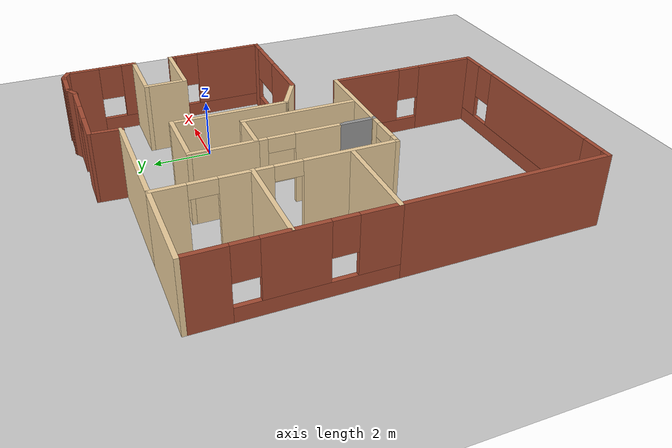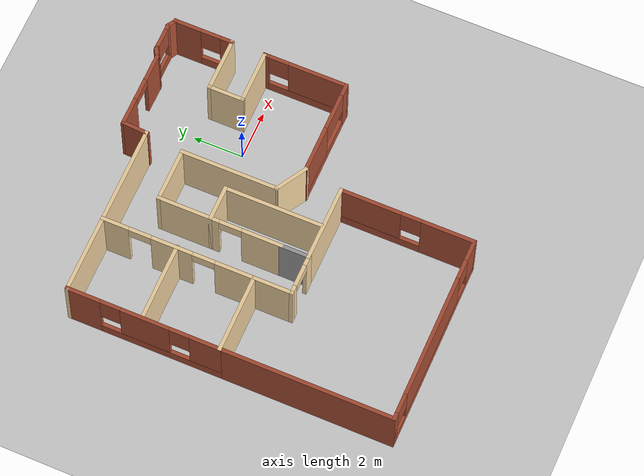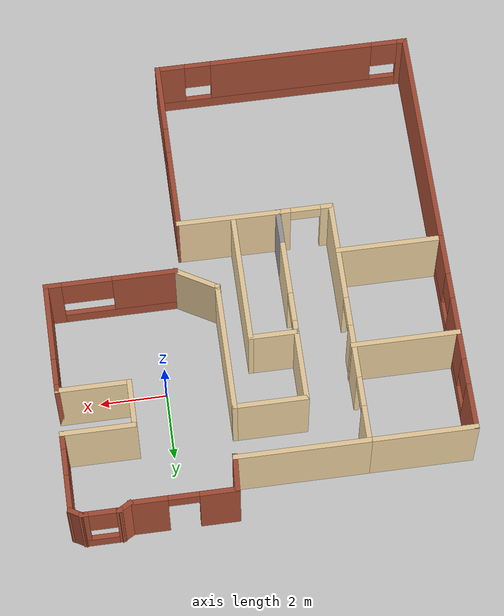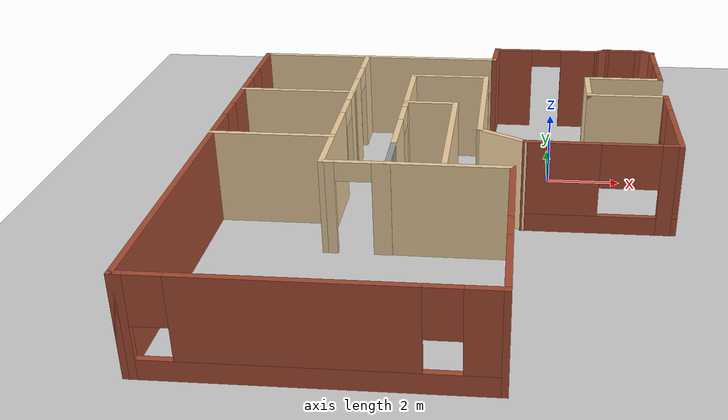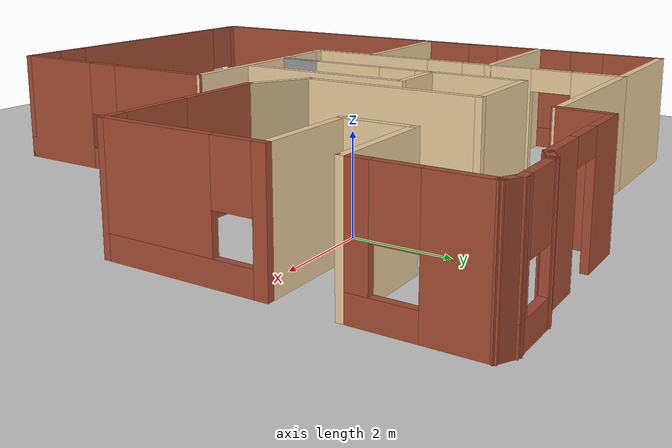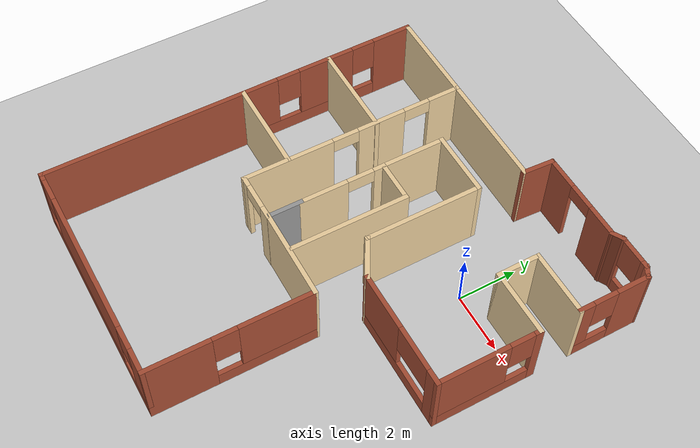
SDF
<sdf version="1.6">
 <world name="default">
  <model name="ground_plane">
   <static>1</static>
   <link name="link">
    <collision name="collision">
     <geometry><plane><normal>0 0 1</normal><size>100 100</size></plane></geometry>
     <surface><friction><ode><mu>100</mu><mu2>50</mu2></ode></friction></surface>
    </collision>
    <visual name="visual">
     <cast_shadows>0</cast_shadows>
     <geometry><plane><normal>0 0 1</normal><size>100 100</size></plane></geometry>
     <material>
      <script><uri>file://media/materials/scripts/gazebo.material</uri><name>Gazebo/Grey</name></script>
     </material>
    </visual>
   </link>
  </model>
  <model name="Silversprings">
   <pose>-2.73372 -2.72178 0 0 -0 0</pose>
   <link name="Wall_0">
    <pose>2.65627 6.86127 0 0 -0 0</pose>
    <visual name="Wall_0_Visual_0">
     <pose>-1.02638 0 1.25 0 -0 0</pose>
     <geometry><box><size>1.16439 0.15 2.5</size></box></geometry>
     <material>
      <script><uri>file://media/materials/scripts/gazebo.material</uri><name>Gazebo/Bricks</name></script>
      <ambient>1 1 1 1</ambient>
     </material>
     <meta><layer>0</layer></meta>
    </visual>
    <collision name="Wall_0_Collision_0">
     <geometry><box><size>1.16439 0.15 2.5</size></box></geometry>
     <pose>-1.02638 0 1.25 0 -0 0</pose>
    </collision>
    <visual name="Wall_0_Visual_1">
     <pose>1.0322 0 1.25 0 -0 0</pose>
     <geometry><box><size>1.15276 0.15 2.5</size></box></geometry>
     <material>
      <script><uri>file://media/materials/scripts/gazebo.material</uri><name>Gazebo/Bricks</name></script>
      <ambient>1 1 1 1</ambient>
     </material>
     <meta><layer>0</layer></meta>
    </visual>
    <collision name="Wall_0_Collision_1">
     <geometry><box><size>1.15276 0.15 2.5</size></box></geometry>
     <pose>1.0322 0 1.25 0 -0 0</pose>
    </collision>
    <visual name="Wall_0_Visual_2">
     <pose>0.005815 0 2.25 0 -0 0</pose>
     <geometry><box><size>0.9 0.15 0.5</size></box></geometry>
     <material>
      <script><uri>file://media/materials/scripts/gazebo.material</uri><name>Gazebo/Bricks</name></script>
      <ambient>1 1 1 1</ambient>
     </material>
     <meta><layer>0</layer></meta>
    </visual>
    <collision name="Wall_0_Collision_2">
     <geometry><box><size>0.9 0.15 0.5</size></box></geometry>
     <pose>0.005815 0 2.25 0 -0 0</pose>
    </collision>
   </link>
   <link name="Wall_1">
    <collision name="Wall_1_Collision">
     <geometry><box><size>0.5 0.15 2.5</size></box></geometry>
     <pose>0 0 1.25 0 -0 0</pose>
    </collision>
    <visual name="Wall_1_Visual">
     <pose>0 0 1.25 0 -0 0</pose>
     <geometry><box><size>0.5 0.15 2.5</size></box></geometry>
     <material>
      <script><uri>file://media/materials/scripts/gazebo.material</uri><name>Gazebo/Bricks</name></script>
      <ambient>1 1 1 1</ambient>
     </material>
     <meta><layer>0</layer></meta>
    </visual>
    <pose>4.34118 6.94877 0 0 -0 0.523599</pose>
   </link>
   <link name="Wall_10">
    <collision name="Wall_10_Collision">
     <geometry><box><size>2.25 0.15 2.5</size></box></geometry>
     <pose>0 0 1.25 0 -0 0</pose>
    </collision>
    <visual name="Wall_10_Visual">
     <pose>0 0 1.25 0 -0 0</pose>
     <geometry><box><size>2.25 0.15 2.5</size></box></geometry>
     <material>
      <script><uri>file://media/materials/scripts/gazebo.material</uri><name>Gazebo/Grey</name></script>
      <ambient>0.921569 0.807843 0.615686 1</ambient>
     </material>
     <meta><layer>0</layer></meta>
    </visual>
    <pose>4.84584 3.16127 0 0 -0 0</pose>
   </link>
   <link name="Wall_14">
    <pose>5.89584 1.48627 0 0 0 -1.5708</pose>
    <visual name="Wall_14_Visual_0">
     <pose>-1.61318 0 1.25 0 -0 0</pose>
     <geometry><box><size>0.273643 0.15 2.5</size></box></geometry>
     <material>
      <script><uri>file://media/materials/scripts/gazebo.material</uri><name>Gazebo/Bricks</name></script>
      <ambient>1 1 1 1</ambient>
     </material>
     <meta><layer>0</layer></meta>
    </visual>
    <collision name="Wall_14_Collision_0">
     <geometry><box><size>0.273643 0.15 2.5</size></box></geometry>
     <pose>-1.61318 0 1.25 0 -0 0</pose>
    </collision>
    <visual name="Wall_14_Visual_1">
     <pose>0.136822 0 0.25 0 -0 0</pose>
     <geometry><box><size>3.22636 0.15 0.5</size></box></geometry>
     <material>
      <script><uri>file://media/materials/scripts/gazebo.material</uri><name>Gazebo/Bricks</name></script>
      <ambient>1 1 1 1</ambient>
     </material>
     <meta><layer>0</layer></meta>
    </visual>
    <collision name="Wall_14_Collision_1">
     <geometry><box><size>3.22636 0.15 0.5</size></box></geometry>
     <pose>0.136822 0 0.25 0 -0 0</pose>
    </collision>
    <visual name="Wall_14_Visual_2">
     <pose>0.536822 0 1.5 0 -0 0</pose>
     <geometry><box><size>2.42636 0.15 2</size></box></geometry>
     <material>
      <script><uri>file://media/materials/scripts/gazebo.material</uri><name>Gazebo/Bricks</name></script>
      <ambient>1 1 1 1</ambient>
     </material>
     <meta><layer>0</layer></meta>
    </visual>
    <collision name="Wall_14_Collision_2">
     <geometry><box><size>2.42636 0.15 2</size></box></geometry>
     <pose>0.536822 0 1.5 0 -0 0</pose>
    </collision>
    <visual name="Wall_14_Visual_3">
     <pose>-1.07636 0 1.9 0 -0 0</pose>
     <geometry><box><size>0.8 0.15 1.2</size></box></geometry>
     <material>
      <script><uri>file://media/materials/scripts/gazebo.material</uri><name>Gazebo/Bricks</name></script>
      <ambient>1 1 1 1</ambient>
     </material>
     <meta><layer>0</layer></meta>
    </visual>
    <collision name="Wall_14_Collision_3">
     <geometry><box><size>0.8 0.15 1.2</size></box></geometry>
     <pose>-1.07636 0 1.9 0 -0 0</pose>
    </collision>
   </link>
   <link name="Wall_15">
    <pose>3.97084 -0.188725 0 0 -0 3.14159</pose>
    <visual name="Wall_15_Visual_0">
     <pose>-1.7298 0 1.25 0 -0 0</pose>
     <geometry><box><size>0.540398 0.15 2.5</size></box></geometry>
     <material>
      <script><uri>file://media/materials/scripts/gazebo.material</uri><name>Gazebo/Bricks</name></script>
      <ambient>1 1 1 1</ambient>
     </material>
     <meta><layer>0</layer></meta>
    </visual>
    <collision name="Wall_15_Collision_0">
     <geometry><box><size>0.540398 0.15 2.5</size></box></geometry>
     <pose>-1.7298 0 1.25 0 -0 0</pose>
    </collision>
    <visual name="Wall_15_Visual_1">
     <pose>0.270199 0 0.25 0 -0 0</pose>
     <geometry><box><size>3.4596 0.15 0.5</size></box></geometry>
     <material>
      <script><uri>file://media/materials/scripts/gazebo.material</uri><name>Gazebo/Bricks</name></script>
      <ambient>1 1 1 1</ambient>
     </material>
     <meta><layer>0</layer></meta>
    </visual>
    <collision name="Wall_15_Collision_1">
     <geometry><box><size>3.4596 0.15 0.5</size></box></geometry>
     <pose>0.270199 0 0.25 0 -0 0</pose>
    </collision>
    <visual name="Wall_15_Visual_2">
     <pose>1.0202 0 1.5 0 -0 0</pose>
     <geometry><box><size>1.9596 0.15 2</size></box></geometry>
     <material>
      <script><uri>file://media/materials/scripts/gazebo.material</uri><name>Gazebo/Bricks</name></script>
      <ambient>1 1 1 1</ambient>
     </material>
     <meta><layer>0</layer></meta>
    </visual>
    <collision name="Wall_15_Collision_2">
     <geometry><box><size>1.9596 0.15 2</size></box></geometry>
     <pose>1.0202 0 1.5 0 -0 0</pose>
    </collision>
    <visual name="Wall_15_Visual_3">
     <pose>-0.709602 0 1.9 0 -0 0</pose>
     <geometry><box><size>1.5 0.15 1.2</size></box></geometry>
     <material>
      <script><uri>file://media/materials/scripts/gazebo.material</uri><name>Gazebo/Bricks</name></script>
      <ambient>1 1 1 1</ambient>
     </material>
     <meta><layer>0</layer></meta>
    </visual>
    <collision name="Wall_15_Collision_3">
     <geometry><box><size>1.5 0.15 1.2</size></box></geometry>
     <pose>-0.709602 0 1.9 0 -0 0</pose>
    </collision>
   </link>
   <link name="Wall_16">
    <collision name="Wall_16_Collision">
     <geometry><box><size>1.5 0.15 2.5</size></box></geometry>
     <pose>0 0 1.25 0 -0 0</pose>
    </collision>
    <visual name="Wall_16_Visual">
     <pose>0 0 1.25 0 -0 0</pose>
     <geometry><box><size>1.5 0.15 2.5</size></box></geometry>
     <material>
      <script><uri>file://media/materials/scripts/gazebo.material</uri><name>Gazebo/Grey</name></script>
      <ambient>0.921569 0.807843 0.615686 1</ambient>
     </material>
     <meta><layer>0</layer></meta>
    </visual>
    <pose>1.46128 0.148774 0 0 -0 2.61799</pose>
   </link>
   <link name="Wall_17">
    <collision name="Wall_17_Collision">
     <geometry><box><size>4 0.15 2.5</size></box></geometry>
     <pose>0 0 1.25 0 -0 0</pose>
    </collision>
    <visual name="Wall_17_Visual">
     <pose>0 0 1.25 0 -0 0</pose>
     <geometry><box><size>4 0.15 2.5</size></box></geometry>
     <material>
      <script><uri>file://media/materials/scripts/gazebo.material</uri><name>Gazebo/Grey</name></script>
      <ambient>0.921569 0.807843 0.615686 1</ambient>
     </material>
     <meta><layer>0</layer></meta>
    </visual>
    <pose>0.876707 2.41127 0 0 -0 1.5708</pose>
   </link>
   <link name="Wall_18">
    <collision name="Wall_18_Collision">
     <geometry><box><size>2.25 0.15 2.5</size></box></geometry>
     <pose>0 0 1.25 0 -0 0</pose>
    </collision>
    <visual name="Wall_18_Visual">
     <pose>0 0 1.25 0 -0 0</pose>
     <geometry><box><size>2.25 0.15 2.5</size></box></geometry>
     <material>
      <script><uri>file://media/materials/scripts/gazebo.material</uri><name>Gazebo/Grey</name></script>
      <ambient>0.921569 0.807843 0.615686 1</ambient>
     </material>
     <meta><layer>0</layer></meta>
    </visual>
    <pose>-0.173293 4.33627 0 0 -0 3.14159</pose>
   </link>
   <link name="Wall_19">
    <collision name="Wall_19_Collision">
     <geometry><box><size>2.25 0.15 2.5</size></box></geometry>
     <pose>0 0 1.25 0 -0 0</pose>
    </collision>
    <visual name="Wall_19_Visual">
     <pose>0 0 1.25 0 -0 0</pose>
     <geometry><box><size>2.25 0.15 2.5</size></box></geometry>
     <material>
      <script><uri>file://media/materials/scripts/gazebo.material</uri><name>Gazebo/Grey</name></script>
      <ambient>0.921569 0.807843 0.615686 1</ambient>
     </material>
     <meta><layer>0</layer></meta>
    </visual>
    <pose>-1.22329 3.28627 0 0 0 -1.5708</pose>
   </link>
   <link name="Wall_2">
    <pose>5.04273 7.03627 0 0 -0 0</pose>
    <visual name="Wall_2_Visual_0">
     <pose>-0.530235 0 1.25 0 -0 0</pose>
     <geometry><box><size>0.18953 0.15 2.5</size></box></geometry>
     <material>
      <script><uri>file://media/materials/scripts/gazebo.material</uri><name>Gazebo/Bricks</name></script>
      <ambient>1 1 1 1</ambient>
     </material>
     <meta><layer>0</layer></meta>
    </visual>
    <collision name="Wall_2_Collision_0">
     <geometry><box><size>0.18953 0.15 2.5</size></box></geometry>
     <pose>-0.530235 0 1.25 0 -0 0</pose>
    </collision>
    <visual name="Wall_2_Visual_1">
     <pose>0.094765 0 0.25 0 -0 0</pose>
     <geometry><box><size>1.06047 0.15 0.5</size></box></geometry>
     <material>
      <script><uri>file://media/materials/scripts/gazebo.material</uri><name>Gazebo/Bricks</name></script>
      <ambient>1 1 1 1</ambient>
     </material>
     <meta><layer>0</layer></meta>
    </visual>
    <collision name="Wall_2_Collision_1">
     <geometry><box><size>1.06047 0.15 0.5</size></box></geometry>
     <pose>0.094765 0 0.25 0 -0 0</pose>
    </collision>
    <visual name="Wall_2_Visual_2">
     <pose>0.494765 0 1.5 0 -0 0</pose>
     <geometry><box><size>0.26047 0.15 2</size></box></geometry>
     <material>
      <script><uri>file://media/materials/scripts/gazebo.material</uri><name>Gazebo/Bricks</name></script>
      <ambient>1 1 1 1</ambient>
     </material>
     <meta><layer>0</layer></meta>
    </visual>
    <collision name="Wall_2_Collision_2">
     <geometry><box><size>0.26047 0.15 2</size></box></geometry>
     <pose>0.494765 0 1.5 0 -0 0</pose>
    </collision>
    <visual name="Wall_2_Visual_3">
     <pose>-0.03547 0 1.9 0 -0 0</pose>
     <geometry><box><size>0.8 0.15 1.2</size></box></geometry>
     <material>
      <script><uri>file://media/materials/scripts/gazebo.material</uri><name>Gazebo/Bricks</name></script>
      <ambient>1 1 1 1</ambient>
     </material>
     <meta><layer>0</layer></meta>
    </visual>
    <collision name="Wall_2_Collision_3">
     <geometry><box><size>0.8 0.15 1.2</size></box></geometry>
     <pose>-0.03547 0 1.9 0 -0 0</pose>
    </collision>
   </link>
   <link name="Wall_20">
    <collision name="Wall_20_Collision">
     <geometry><box><size>1.5 0.15 2.5</size></box></geometry>
     <pose>0 0 1.25 0 -0 0</pose>
    </collision>
    <visual name="Wall_20_Visual">
     <pose>0 0 1.25 0 -0 0</pose>
     <geometry><box><size>1.5 0.15 2.5</size></box></geometry>
     <material>
      <script><uri>file://media/materials/scripts/gazebo.material</uri><name>Gazebo/Grey</name></script>
      <ambient>0.921569 0.807843 0.615686 1</ambient>
     </material>
     <meta><layer>0</layer></meta>
    </visual>
    <pose>-0.548293 2.23627 0 0 -0 0</pose>
   </link>
   <link name="Wall_21">
    <collision name="Wall_21_Collision">
     <geometry><box><size>4 0.15 2.5</size></box></geometry>
     <pose>0 0 1.25 0 -0 0</pose>
    </collision>
    <visual name="Wall_21_Visual">
     <pose>0 0 1.25 0 -0 0</pose>
     <geometry><box><size>4 0.15 2.5</size></box></geometry>
     <material>
      <script><uri>file://media/materials/scripts/gazebo.material</uri><name>Gazebo/Grey</name></script>
      <ambient>0.921569 0.807843 0.615686 1</ambient>
     </material>
     <meta><layer>0</layer></meta>
    </visual>
    <pose>0.126707 0.311275 0 0 0 -1.5708</pose>
   </link>
   <link name="Wall_23">
    <pose>-1.22329 0.811275 0 0 -0 1.5708</pose>
    <visual name="Wall_23_Visual_0">
     <pose>-0.66518 0 1.25 0 -0 0</pose>
     <geometry><box><size>1.66964 0.15 2.5</size></box></geometry>
     <material>
      <script><uri>file://media/materials/scripts/gazebo.material</uri><name>Gazebo/Grey</name></script>
      <ambient>0.921569 0.807843 0.615686 1</ambient>
     </material>
     <meta><layer>0</layer></meta>
    </visual>
    <collision name="Wall_23_Collision_0">
     <geometry><box><size>1.66964 0.15 2.5</size></box></geometry>
     <pose>-0.66518 0 1.25 0 -0 0</pose>
    </collision>
    <visual name="Wall_23_Visual_1">
     <pose>1.28482 0 1.25 0 -0 0</pose>
     <geometry><box><size>0.43036 0.15 2.5</size></box></geometry>
     <material>
      <script><uri>file://media/materials/scripts/gazebo.material</uri><name>Gazebo/Grey</name></script>
      <ambient>0.921569 0.807843 0.615686 1</ambient>
     </material>
     <meta><layer>0</layer></meta>
    </visual>
    <collision name="Wall_23_Collision_1">
     <geometry><box><size>0.43036 0.15 2.5</size></box></geometry>
     <pose>1.28482 0 1.25 0 -0 0</pose>
    </collision>
    <visual name="Wall_23_Visual_2">
     <pose>0.61964 0 2.25 0 -0 0</pose>
     <geometry><box><size>0.9 0.15 0.5</size></box></geometry>
     <material>
      <script><uri>file://media/materials/scripts/gazebo.material</uri><name>Gazebo/Grey</name></script>
      <ambient>0.921569 0.807843 0.615686 1</ambient>
     </material>
     <meta><layer>0</layer></meta>
    </visual>
    <collision name="Wall_23_Collision_2">
     <geometry><box><size>0.9 0.15 0.5</size></box></geometry>
     <pose>0.61964 0 2.25 0 -0 0</pose>
    </collision>
   </link>
   <link name="Wall_25">
    <collision name="Wall_25_Collision">
     <geometry><box><size>1.25 0.15 2.5</size></box></geometry>
     <pose>0 0 1.25 0 -0 0</pose>
    </collision>
    <visual name="Wall_25_Visual">
     <pose>0 0 1.25 0 -0 0</pose>
     <geometry><box><size>1.25 0.15 2.5</size></box></geometry>
     <material>
      <script><uri>file://media/materials/scripts/gazebo.material</uri><name>Gazebo/Grey</name></script>
      <ambient>1 1 1 1</ambient>
     </material>
     <meta><layer>0</layer></meta>
    </visual>
    <pose>-1.22329 -1.16373 0 0 0 -1.5708</pose>
   </link>
   <link name="Wall_26">
    <pose>-2.02329 -1.71373 0 0 -0 3.14159</pose>
    <visual name="Wall_26_Visual_0">
     <pose>-0.643622 0 1.25 0 -0 0</pose>
     <geometry><box><size>0.462755 0.15 2.5</size></box></geometry>
     <material>
      <script><uri>file://media/materials/scripts/gazebo.material</uri><name>Gazebo/Grey</name></script>
      <ambient>0.921569 0.807843 0.615686 1</ambient>
     </material>
     <meta><layer>0</layer></meta>
    </visual>
    <collision name="Wall_26_Collision_0">
     <geometry><box><size>0.462755 0.15 2.5</size></box></geometry>
     <pose>-0.643622 0 1.25 0 -0 0</pose>
    </collision>
    <visual name="Wall_26_Visual_1">
     <pose>0.681378 0 1.25 0 -0 0</pose>
     <geometry><box><size>0.387245 0.15 2.5</size></box></geometry>
     <material>
      <script><uri>file://media/materials/scripts/gazebo.material</uri><name>Gazebo/Grey</name></script>
      <ambient>0.921569 0.807843 0.615686 1</ambient>
     </material>
     <meta><layer>0</layer></meta>
    </visual>
    <collision name="Wall_26_Collision_1">
     <geometry><box><size>0.387245 0.15 2.5</size></box></geometry>
     <pose>0.681378 0 1.25 0 -0 0</pose>
    </collision>
    <visual name="Wall_26_Visual_2">
     <pose>0.037755 0 2.25 0 -0 0</pose>
     <geometry><box><size>0.9 0.15 0.5</size></box></geometry>
     <material>
      <script><uri>file://media/materials/scripts/gazebo.material</uri><name>Gazebo/Grey</name></script>
      <ambient>0.921569 0.807843 0.615686 1</ambient>
     </material>
     <meta><layer>0</layer></meta>
    </visual>
    <collision name="Wall_26_Collision_2">
     <geometry><box><size>0.9 0.15 0.5</size></box></geometry>
     <pose>0.037755 0 2.25 0 -0 0</pose>
    </collision>
   </link>
   <link name="Wall_28">
    <pose>-2.82329 2.08627 0 0 -0 1.5708</pose>
    <visual name="Wall_28_Visual_0">
     <pose>-2.30486 0 1.25 0 -0 0</pose>
     <geometry><box><size>3.14028 0.15 2.5</size></box></geometry>
     <material>
      <script><uri>file://media/materials/scripts/gazebo.material</uri><name>Gazebo/Grey</name></script>
      <ambient>0.921569 0.807843 0.615686 1</ambient>
     </material>
     <meta><layer>0</layer></meta>
    </visual>
    <collision name="Wall_28_Collision_0">
     <geometry><box><size>3.14028 0.15 2.5</size></box></geometry>
     <pose>-2.30486 0 1.25 0 -0 0</pose>
    </collision>
    <visual name="Wall_28_Visual_1">
     <pose>0.998102 0 1.25 0 -0 0</pose>
     <geometry><box><size>1.66565 0.15 2.5</size></box></geometry>
     <material>
      <script><uri>file://media/materials/scripts/gazebo.material</uri><name>Gazebo/Grey</name></script>
      <ambient>0.921569 0.807843 0.615686 1</ambient>
     </material>
     <meta><layer>0</layer></meta>
    </visual>
    <collision name="Wall_28_Collision_1">
     <geometry><box><size>1.66565 0.15 2.5</size></box></geometry>
     <pose>0.998102 0 1.25 0 -0 0</pose>
    </collision>
    <visual name="Wall_28_Visual_2">
     <pose>3.30296 0 1.25 0 -0 0</pose>
     <geometry><box><size>1.14407 0.15 2.5</size></box></geometry>
     <material>
      <script><uri>file://media/materials/scripts/gazebo.material</uri><name>Gazebo/Grey</name></script>
      <ambient>0.921569 0.807843 0.615686 1</ambient>
     </material>
     <meta><layer>0</layer></meta>
    </visual>
    <collision name="Wall_28_Collision_2">
     <geometry><box><size>1.14407 0.15 2.5</size></box></geometry>
     <pose>3.30296 0 1.25 0 -0 0</pose>
    </collision>
    <visual name="Wall_28_Visual_3">
     <pose>-0.284723 0 2.25 0 -0 0</pose>
     <geometry><box><size>0.9 0.15 0.5</size></box></geometry>
     <material>
      <script><uri>file://media/materials/scripts/gazebo.material</uri><name>Gazebo/Grey</name></script>
      <ambient>0.921569 0.807843 0.615686 1</ambient>
     </material>
     <meta><layer>0</layer></meta>
    </visual>
    <collision name="Wall_28_Collision_3">
     <geometry><box><size>0.9 0.15 0.5</size></box></geometry>
     <pose>-0.284723 0 2.25 0 -0 0</pose>
    </collision>
    <visual name="Wall_28_Visual_4">
     <pose>2.28093 0 2.25 0 -0 0</pose>
     <geometry><box><size>0.9 0.15 0.5</size></box></geometry>
     <material>
      <script><uri>file://media/materials/scripts/gazebo.material</uri><name>Gazebo/Grey</name></script>
      <ambient>0.921569 0.807843 0.615686 1</ambient>
     </material>
     <meta><layer>0</layer></meta>
    </visual>
    <collision name="Wall_28_Collision_4">
     <geometry><box><size>0.9 0.15 0.5</size></box></geometry>
     <pose>2.28093 0 2.25 0 -0 0</pose>
    </collision>
   </link>
   <link name="Wall_3">
    <collision name="Wall_3_Collision">
     <geometry><box><size>0.5 0.15 2.5</size></box></geometry>
     <pose>0 0 1.25 0 -0 0</pose>
    </collision>
    <visual name="Wall_3_Visual">
     <pose>0 0 1.25 0 -0 0</pose>
     <geometry><box><size>0.5 0.15 2.5</size></box></geometry>
     <material>
      <script><uri>file://media/materials/scripts/gazebo.material</uri><name>Gazebo/Bricks</name></script>
      <ambient>1 1 1 1</ambient>
     </material>
     <meta><layer>0</layer></meta>
    </visual>
    <pose>5.74429 6.94877 0 0 0 -0.523599</pose>
   </link>
   <link name="Wall_31">
    <collision name="Wall_31_Collision">
     <geometry><box><size>4.03366 0.15 2.5</size></box></geometry>
     <pose>0 0 1.25 0 -0 0</pose>
    </collision>
    <visual name="Wall_31_Visual">
     <pose>0 0 1.25 0 -0 0</pose>
     <geometry><box><size>4.03366 0.15 2.5</size></box></geometry>
     <material>
      <script><uri>file://media/materials/scripts/gazebo.material</uri><name>Gazebo/Grey</name></script>
      <ambient>0.921569 0.807843 0.615686 1</ambient>
     </material>
     <meta><layer>0</layer></meta>
    </visual>
    <pose>-0.881642 5.88627 0 0 -0 0</pose>
   </link>
   <link name="Wall_32">
    <collision name="Wall_32_Collision">
     <geometry><box><size>1.12703 0.15 2.5</size></box></geometry>
     <pose>0 0 1.25 0 -0 0</pose>
    </collision>
    <visual name="Wall_32_Visual">
     <pose>0 0 1.25 0 -0 0</pose>
     <geometry><box><size>1.12703 0.15 2.5</size></box></geometry>
     <material>
      <script><uri>file://media/materials/scripts/gazebo.material</uri><name>Gazebo/Bricks</name></script>
      <ambient>1 1 1 1</ambient>
     </material>
     <meta><layer>0</layer></meta>
    </visual>
    <pose>1.09147 6.34732 0 0 -0 1.50636</pose>
   </link>
   <link name="Wall_34">
    <collision name="Wall_34_Collision">
     <geometry><box><size>3.25 0.15 2.5</size></box></geometry>
     <pose>0 0 1.25 0 -0 0</pose>
    </collision>
    <visual name="Wall_34_Visual">
     <pose>0 0 1.25 0 -0 0</pose>
     <geometry><box><size>3.25 0.15 2.5</size></box></geometry>
     <material>
      <script><uri>file://media/materials/scripts/gazebo.material</uri><name>Gazebo/Grey</name></script>
      <ambient>0.921569 0.807843 0.615686 1</ambient>
     </material>
     <meta><layer>0</layer></meta>
    </visual>
    <pose>-4.37329 5.88627 0 0 -0 3.14159</pose>
   </link>
   <link name="Wall_35">
    <pose>-5.92329 2.83627 0 0 0 -1.5708</pose>
    <visual name="Wall_35_Visual_0">
     <pose>-2.42116 0 1.25 0 -0 0</pose>
     <geometry><box><size>1.40768 0.15 2.5</size></box></geometry>
     <material>
      <script><uri>file://media/materials/scripts/gazebo.material</uri><name>Gazebo/Bricks</name></script>
      <ambient>1 1 1 1</ambient>
     </material>
     <meta><layer>0</layer></meta>
    </visual>
    <collision name="Wall_35_Collision_0">
     <geometry><box><size>1.40768 0.15 2.5</size></box></geometry>
     <pose>-2.42116 0 1.25 0 -0 0</pose>
    </collision>
    <visual name="Wall_35_Visual_1">
     <pose>0.703839 0 0.25 0 -0 0</pose>
     <geometry><box><size>4.84232 0.15 0.5</size></box></geometry>
     <material>
      <script><uri>file://media/materials/scripts/gazebo.material</uri><name>Gazebo/Bricks</name></script>
      <ambient>1 1 1 1</ambient>
     </material>
     <meta><layer>0</layer></meta>
    </visual>
    <collision name="Wall_35_Collision_1">
     <geometry><box><size>4.84232 0.15 0.5</size></box></geometry>
     <pose>0.703839 0 0.25 0 -0 0</pose>
    </collision>
    <visual name="Wall_35_Visual_2">
     <pose>0.066126 0 1.5 0 -0 0</pose>
     <geometry><box><size>1.9669 0.15 2</size></box></geometry>
     <material>
      <script><uri>file://media/materials/scripts/gazebo.material</uri><name>Gazebo/Bricks</name></script>
      <ambient>1 1 1 1</ambient>
     </material>
     <meta><layer>0</layer></meta>
    </visual>
    <collision name="Wall_35_Collision_2">
     <geometry><box><size>1.9669 0.15 2</size></box></geometry>
     <pose>0.066126 0 1.5 0 -0 0</pose>
    </collision>
    <visual name="Wall_35_Visual_3">
     <pose>2.48729 0 1.5 0 -0 0</pose>
     <geometry><box><size>1.27543 0.15 2</size></box></geometry>
     <material>
      <script><uri>file://media/materials/scripts/gazebo.material</uri><name>Gazebo/Bricks</name></script>
      <ambient>1 1 1 1</ambient>
     </material>
     <meta><layer>0</layer></meta>
    </visual>
    <collision name="Wall_35_Collision_3">
     <geometry><box><size>1.27543 0.15 2</size></box></geometry>
     <pose>2.48729 0 1.5 0 -0 0</pose>
    </collision>
    <visual name="Wall_35_Visual_4">
     <pose>-1.31732 0 1.9 0 -0 0</pose>
     <geometry><box><size>0.8 0.15 1.2</size></box></geometry>
     <material>
      <script><uri>file://media/materials/scripts/gazebo.material</uri><name>Gazebo/Bricks</name></script>
      <ambient>1 1 1 1</ambient>
     </material>
     <meta><layer>0</layer></meta>
    </visual>
    <collision name="Wall_35_Collision_4">
     <geometry><box><size>0.8 0.15 1.2</size></box></geometry>
     <pose>-1.31732 0 1.9 0 -0 0</pose>
    </collision>
    <visual name="Wall_35_Visual_5">
     <pose>1.44957 0 1.9 0 -0 0</pose>
     <geometry><box><size>0.8 0.15 1.2</size></box></geometry>
     <material>
      <script><uri>file://media/materials/scripts/gazebo.material</uri><name>Gazebo/Bricks</name></script>
      <ambient>1 1 1 1</ambient>
     </material>
     <meta><layer>0</layer></meta>
    </visual>
    <collision name="Wall_35_Collision_5">
     <geometry><box><size>0.8 0.15 1.2</size></box></geometry>
     <pose>1.44957 0 1.9 0 -0 0</pose>
    </collision>
   </link>
   <link name="Wall_38">
    <collision name="Wall_38_Collision">
     <geometry><box><size>3.25 0.15 2.5</size></box></geometry>
     <pose>0 0 1.25 0 -0 0</pose>
    </collision>
    <visual name="Wall_38_Visual">
     <pose>0 0 1.25 0 -0 0</pose>
     <geometry><box><size>3.25 0.15 2.5</size></box></geometry>
     <material>
      <script><uri>file://media/materials/scripts/gazebo.material</uri><name>Gazebo/Grey</name></script>
      <ambient>0.921569 0.807843 0.615686 1</ambient>
     </material>
     <meta><layer>0</layer></meta>
    </visual>
    <pose>-4.37329 -0.213726 0 0 -0 0</pose>
   </link>
   <link name="Wall_4">
    <pose>5.89584 5.68627 0 0 0 -1.5708</pose>
    <visual name="Wall_4_Visual_0">
     <pose>-0.675156 0 1.25 0 -0 0</pose>
     <geometry><box><size>1.14969 0.15 2.5</size></box></geometry>
     <material>
      <script><uri>file://media/materials/scripts/gazebo.material</uri><name>Gazebo/Bricks</name></script>
      <ambient>1 1 1 1</ambient>
     </material>
     <meta><layer>0</layer></meta>
    </visual>
    <collision name="Wall_4_Collision_0">
     <geometry><box><size>1.14969 0.15 2.5</size></box></geometry>
     <pose>-0.675156 0 1.25 0 -0 0</pose>
    </collision>
    <visual name="Wall_4_Visual_1">
     <pose>0.574844 0 0.25 0 -0 0</pose>
     <geometry><box><size>1.35031 0.15 0.5</size></box></geometry>
     <material>
      <script><uri>file://media/materials/scripts/gazebo.material</uri><name>Gazebo/Bricks</name></script>
      <ambient>1 1 1 1</ambient>
     </material>
     <meta><layer>0</layer></meta>
    </visual>
    <collision name="Wall_4_Collision_1">
     <geometry><box><size>1.35031 0.15 0.5</size></box></geometry>
     <pose>0.574844 0 0.25 0 -0 0</pose>
    </collision>
    <visual name="Wall_4_Visual_2">
     <pose>0.974844 0 1.5 0 -0 0</pose>
     <geometry><box><size>0.550313 0.15 2</size></box></geometry>
     <material>
      <script><uri>file://media/materials/scripts/gazebo.material</uri><name>Gazebo/Bricks</name></script>
      <ambient>1 1 1 1</ambient>
     </material>
     <meta><layer>0</layer></meta>
    </visual>
    <collision name="Wall_4_Collision_2">
     <geometry><box><size>0.550313 0.15 2</size></box></geometry>
     <pose>0.974844 0 1.5 0 -0 0</pose>
    </collision>
    <visual name="Wall_4_Visual_3">
     <pose>0.299687 0 1.9 0 -0 0</pose>
     <geometry><box><size>0.8 0.15 1.2</size></box></geometry>
     <material>
      <script><uri>file://media/materials/scripts/gazebo.material</uri><name>Gazebo/Bricks</name></script>
      <ambient>1 1 1 1</ambient>
     </material>
     <meta><layer>0</layer></meta>
    </visual>
    <collision name="Wall_4_Collision_3">
     <geometry><box><size>0.8 0.15 1.2</size></box></geometry>
     <pose>0.299687 0 1.9 0 -0 0</pose>
    </collision>
   </link>
   <link name="Wall_42">
    <collision name="Wall_42_Collision">
     <geometry><box><size>3.25 0.15 2.5</size></box></geometry>
     <pose>0 0 1.25 0 -0 0</pose>
    </collision>
    <visual name="Wall_42_Visual">
     <pose>0 0 1.25 0 -0 0</pose>
     <geometry><box><size>3.25 0.15 2.5</size></box></geometry>
     <material>
      <script><uri>file://media/materials/scripts/gazebo.material</uri><name>Gazebo/Grey</name></script>
      <ambient>0.921569 0.807843 0.615686 1</ambient>
     </material>
     <meta><layer>0</layer></meta>
    </visual>
    <pose>-4.35165 2.886 0 0 -0 3.14159</pose>
   </link>
   <link name="Wall_44">
    <collision name="Wall_44_Collision">
     <geometry><box><size>7 0.15 2.5</size></box></geometry>
     <pose>0 0 1.25 0 -0 0</pose>
    </collision>
    <visual name="Wall_44_Visual">
     <pose>0 0 1.25 0 -0 0</pose>
     <geometry><box><size>7 0.15 2.5</size></box></geometry>
     <material>
      <script><uri>file://media/materials/scripts/gazebo.material</uri><name>Gazebo/Bricks</name></script>
      <ambient>1 1 1 1</ambient>
     </material>
     <meta><layer>0</layer></meta>
    </visual>
    <pose>-5.92329 -3.63872 0 0 0 -1.5708</pose>
   </link>
   <link name="Wall_45">
    <pose>-2.08183 -7.06372 0 0 -0 0</pose>
    <visual name="Wall_45_Visual_0">
     <pose>-3.7575 0 1.25 0 -0 0</pose>
     <geometry><box><size>0.317908 0.15 2.5</size></box></geometry>
     <material>
      <script><uri>file://media/materials/scripts/gazebo.material</uri><name>Gazebo/Bricks</name></script>
      <ambient>1 1 1 1</ambient>
     </material>
     <meta><layer>0</layer></meta>
    </visual>
    <collision name="Wall_45_Collision_0">
     <geometry><box><size>0.317908 0.15 2.5</size></box></geometry>
     <pose>-3.7575 0 1.25 0 -0 0</pose>
    </collision>
    <visual name="Wall_45_Visual_1">
     <pose>0.158954 0 0.25 0 -0 0</pose>
     <geometry><box><size>7.51501 0.15 0.5</size></box></geometry>
     <material>
      <script><uri>file://media/materials/scripts/gazebo.material</uri><name>Gazebo/Bricks</name></script>
      <ambient>1 1 1 1</ambient>
     </material>
     <meta><layer>0</layer></meta>
    </visual>
    <collision name="Wall_45_Collision_1">
     <geometry><box><size>7.51501 0.15 0.5</size></box></geometry>
     <pose>0.158954 0 0.25 0 -0 0</pose>
    </collision>
    <visual name="Wall_45_Visual_2">
     <pose>-0.293309 0 1.5 0 -0 0</pose>
     <geometry><box><size>5.01048 0.15 2</size></box></geometry>
     <material>
      <script><uri>file://media/materials/scripts/gazebo.material</uri><name>Gazebo/Bricks</name></script>
      <ambient>1 1 1 1</ambient>
     </material>
     <meta><layer>0</layer></meta>
    </visual>
    <collision name="Wall_45_Collision_2">
     <geometry><box><size>5.01048 0.15 2</size></box></geometry>
     <pose>-0.293309 0 1.5 0 -0 0</pose>
    </collision>
    <visual name="Wall_45_Visual_3">
     <pose>3.4642 0 1.5 0 -0 0</pose>
     <geometry><box><size>0.904525 0.15 2</size></box></geometry>
     <material>
      <script><uri>file://media/materials/scripts/gazebo.material</uri><name>Gazebo/Bricks</name></script>
      <ambient>1 1 1 1</ambient>
     </material>
     <meta><layer>0</layer></meta>
    </visual>
    <collision name="Wall_45_Collision_3">
     <geometry><box><size>0.904525 0.15 2</size></box></geometry>
     <pose>3.4642 0 1.5 0 -0 0</pose>
    </collision>
    <visual name="Wall_45_Visual_4">
     <pose>-3.19855 0 1.9 0 -0 0</pose>
     <geometry><box><size>0.8 0.15 1.2</size></box></geometry>
     <material>
      <script><uri>file://media/materials/scripts/gazebo.material</uri><name>Gazebo/Bricks</name></script>
      <ambient>1 1 1 1</ambient>
     </material>
     <meta><layer>0</layer></meta>
    </visual>
    <collision name="Wall_45_Collision_4">
     <geometry><box><size>0.8 0.15 1.2</size></box></geometry>
     <pose>-3.19855 0 1.9 0 -0 0</pose>
    </collision>
    <visual name="Wall_45_Visual_5">
     <pose>2.61193 0 1.9 0 -0 0</pose>
     <geometry><box><size>0.8 0.15 1.2</size></box></geometry>
     <material>
      <script><uri>file://media/materials/scripts/gazebo.material</uri><name>Gazebo/Bricks</name></script>
      <ambient>1 1 1 1</ambient>
     </material>
     <meta><layer>0</layer></meta>
    </visual>
    <collision name="Wall_45_Collision_5">
     <geometry><box><size>0.8 0.15 1.2</size></box></geometry>
     <pose>2.61193 0 1.9 0 -0 0</pose>
    </collision>
   </link>
   <link name="Wall_46">
    <pose>1.75962 -4.39423 0 0 -0 1.5708</pose>
    <visual name="Wall_46_Visual_0">
     <pose>-1.6562 0 1.25 0 -0 0</pose>
     <geometry><box><size>2.1766 0.15 2.5</size></box></geometry>
     <material>
      <script><uri>file://media/materials/scripts/gazebo.material</uri><name>Gazebo/Bricks</name></script>
      <ambient>1 1 1 1</ambient>
     </material>
     <meta><layer>0</layer></meta>
    </visual>
    <collision name="Wall_46_Collision_0">
     <geometry><box><size>2.1766 0.15 2.5</size></box></geometry>
     <pose>-1.6562 0 1.25 0 -0 0</pose>
    </collision>
    <visual name="Wall_46_Visual_1">
     <pose>1.0883 0 0.25 0 -0 0</pose>
     <geometry><box><size>3.3124 0.15 0.5</size></box></geometry>
     <material>
      <script><uri>file://media/materials/scripts/gazebo.material</uri><name>Gazebo/Bricks</name></script>
      <ambient>1 1 1 1</ambient>
     </material>
     <meta><layer>0</layer></meta>
    </visual>
    <collision name="Wall_46_Collision_1">
     <geometry><box><size>3.3124 0.15 0.5</size></box></geometry>
     <pose>1.0883 0 0.25 0 -0 0</pose>
    </collision>
    <visual name="Wall_46_Visual_2">
     <pose>1.4883 0 1.5 0 -0 0</pose>
     <geometry><box><size>2.5124 0.15 2</size></box></geometry>
     <material>
      <script><uri>file://media/materials/scripts/gazebo.material</uri><name>Gazebo/Bricks</name></script>
      <ambient>1 1 1 1</ambient>
     </material>
     <meta><layer>0</layer></meta>
    </visual>
    <collision name="Wall_46_Collision_2">
     <geometry><box><size>2.5124 0.15 2</size></box></geometry>
     <pose>1.4883 0 1.5 0 -0 0</pose>
    </collision>
    <visual name="Wall_46_Visual_3">
     <pose>-0.167902 0 1.9 0 -0 0</pose>
     <geometry><box><size>0.8 0.15 1.2</size></box></geometry>
     <material>
      <script><uri>file://media/materials/scripts/gazebo.material</uri><name>Gazebo/Bricks</name></script>
      <ambient>1 1 1 1</ambient>
     </material>
     <meta><layer>0</layer></meta>
    </visual>
    <collision name="Wall_46_Collision_3">
     <geometry><box><size>0.8 0.15 1.2</size></box></geometry>
     <pose>-0.167902 0 1.9 0 -0 0</pose>
    </collision>
   </link>
   <link name="Wall_47">
    <collision name="Wall_47_Collision">
     <geometry><box><size>3.154 0.15 2.5</size></box></geometry>
     <pose>0 0 1.25 0 -0 0</pose>
    </collision>
    <visual name="Wall_47_Visual">
     <pose>0 0 1.25 0 -0 0</pose>
     <geometry><box><size>3.154 0.15 2.5</size></box></geometry>
     <material>
      <script><uri>file://media/materials/scripts/gazebo.material</uri><name>Gazebo/Grey</name></script>
      <ambient>0.921569 0.807843 0.615686 1</ambient>
     </material>
     <meta><layer>0</layer></meta>
    </visual>
    <pose>0.257657 -1.71496 0 0 -0 3.13509</pose>
   </link>
   <link name="Wall_5">
    <collision name="Wall_5_Collision">
     <geometry><box><size>2.25 0.15 2.5</size></box></geometry>
     <pose>0 0 1.25 0 -0 0</pose>
    </collision>
    <visual name="Wall_5_Visual">
     <pose>0 0 1.25 0 -0 0</pose>
     <geometry><box><size>2.25 0.15 2.5</size></box></geometry>
     <material>
      <script><uri>file://media/materials/scripts/gazebo.material</uri><name>Gazebo/Grey</name></script>
      <ambient>0.921569 0.807843 0.615686 1</ambient>
     </material>
     <meta><layer>0</layer></meta>
    </visual>
    <pose>4.84584 4.51127 0 0 -0 3.14159</pose>
   </link>
   <link name="Wall_9">
    <collision name="Wall_9_Collision">
     <geometry><box><size>1.5 0.15 2.5</size></box></geometry>
     <pose>0 0 1.25 0 -0 0</pose>
    </collision>
    <visual name="Wall_9_Visual">
     <pose>0 0 1.25 0 -0 0</pose>
     <geometry><box><size>1.5 0.15 2.5</size></box></geometry>
     <material>
      <script><uri>file://media/materials/scripts/gazebo.material</uri><name>Gazebo/Grey</name></script>
      <ambient>0.921569 0.807843 0.615686 1</ambient>
     </material>
     <meta><layer>0</layer></meta>
    </visual>
    <pose>3.79584 3.83627 0 0 0 -1.5708</pose>
   </link>
   <static>1</static>
  </model>
 </world>
</sdf>
